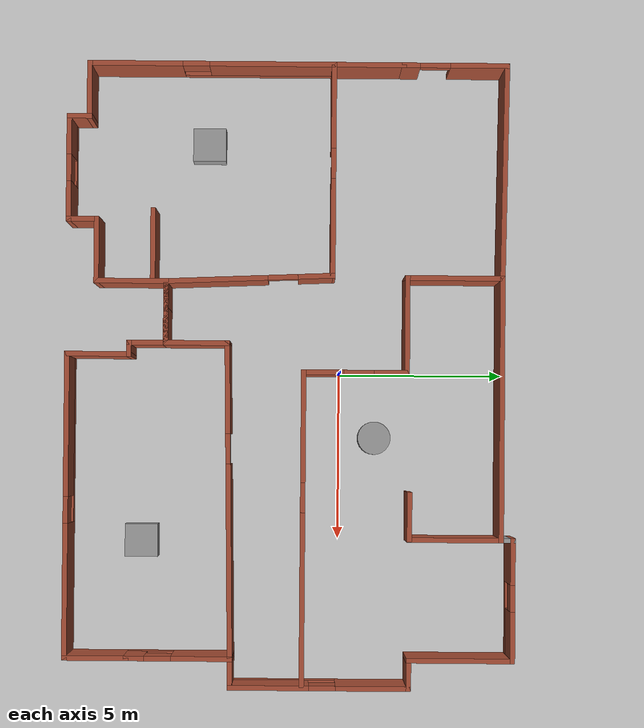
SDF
<sdf version="1.7">
 <world name="default">
  <light name="sun" type="directional">
   <pose>0 0 10 0 -0 0</pose>
   <diffuse>0.8 0.8 0.8 1</diffuse>
   <specular>0.2 0.2 0.2 1</specular>
   <attenuation>
    <range>1000</range>
    <constant>0.9</constant>
    <linear>0.01</linear>
    <quadratic>0.001</quadratic>
   </attenuation>
   <direction>-0.5 0.1 -0.9</direction>
   <spot><inner_angle>0</inner_angle><outer_angle>0</outer_angle><falloff>0</falloff></spot>
  </light>
  <model name="ground_plane">
   <static>1</static>
   <link name="link">
    <collision name="collision">
     <geometry><plane><normal>0 0 1</normal><size>100 100</size></plane></geometry>
     <surface>
      <contact><collide_bitmask>65535</collide_bitmask></contact>
      <friction><ode><mu>100</mu><mu2>50</mu2></ode></friction>
     </surface>
    </collision>
    <visual name="visual">
     <cast_shadows>0</cast_shadows>
     <geometry><plane><normal>0 0 1</normal><size>100 100</size></plane></geometry>
     <material>
      <script><uri>file://media/materials/scripts/gazebo.material</uri><name>Gazebo/Grey</name></script>
     </material>
    </visual>
   </link>
  </model>
  <gravity>0 0 -9.8</gravity>
  <magnetic_field>6e-06 2.3e-05 -4.2e-05</magnetic_field>
  <atmosphere type="adiabatic"/>
  <physics type="ode">
   <max_step_size>0.001</max_step_size>
   <real_time_factor>1</real_time_factor>
   <real_time_update_rate>1000</real_time_update_rate>
  </physics>
  <scene><ambient>0.4 0.4 0.4 1</ambient><background>0.7 0.7 0.7 1</background><shadows>1</shadows></scene>
  <spherical_coordinates>
   <surface_model>EARTH_WGS84</surface_model>
   <latitude_deg>0</latitude_deg>
   <longitude_deg>0</longitude_deg>
   <elevation>0</elevation>
   <heading_deg>0</heading_deg>
  </spherical_coordinates>
  <model name="house">
   <pose>0.067509 -1.47324 0 0 -0 0</pose>
   <link name="Wall_14">
    <collision name="Wall_14_Collision">
     <geometry><box><size>8 0.15 2.5</size></box></geometry>
     <pose>0 0 1.25 0 -0 0</pose>
    </collision>
    <visual name="Wall_14_Visual">
     <pose>0 0 1.25 0 -0 0</pose>
     <geometry><box><size>8 0.15 2.5</size></box></geometry>
     <material>
      <script><uri>file://media/materials/scripts/gazebo.material</uri><name>Gazebo/Bricks</name></script>
      <ambient>1 1 1 1</ambient>
     </material>
     <meta><layer>0</layer></meta>
    </visual>
    <pose>0.975581 6.35 0 0 -0 0</pose>
   </link>
   <link name="Wall_15">
    <collision name="Wall_15_Collision">
     <geometry><box><size>0.5 0.15 2.5</size></box></geometry>
     <pose>0 0 1.25 0 -0 0</pose>
    </collision>
    <visual name="Wall_15_Visual">
     <pose>0 0 1.25 0 -0 0</pose>
     <geometry><box><size>0.5 0.15 2.5</size></box></geometry>
     <material>
      <script><uri>file://media/materials/scripts/gazebo.material</uri><name>Gazebo/Grey</name></script>
      <ambient>1 1 1 1</ambient>
     </material>
     <meta><layer>0</layer></meta>
    </visual>
    <pose>4.90058 6.525 0 0 -0 1.5708</pose>
   </link>
   <link name="Wall_16">
    <pose>6.70058 6.7 0 0 -0 0</pose>
    <visual name="Wall_16_Visual_0">
     <pose>-1.17545 0 1.25 0 -0 0</pose>
     <geometry><box><size>1.39911 0.15 2.5</size></box></geometry>
     <material>
      <script><uri>file://media/materials/scripts/gazebo.material</uri><name>Gazebo/Bricks</name></script>
      <ambient>1 1 1 1</ambient>
     </material>
     <meta><layer>0</layer></meta>
    </visual>
    <collision name="Wall_16_Collision_0">
     <geometry><box><size>1.39911 0.15 2.5</size></box></geometry>
     <pose>-1.17545 0 1.25 0 -0 0</pose>
    </collision>
    <visual name="Wall_16_Visual_1">
     <pose>0.699555 0 0.25 0 -0 0</pose>
     <geometry><box><size>2.35089 0.15 0.5</size></box></geometry>
     <material>
      <script><uri>file://media/materials/scripts/gazebo.material</uri><name>Gazebo/Bricks</name></script>
      <ambient>1 1 1 1</ambient>
     </material>
     <meta><layer>0</layer></meta>
    </visual>
    <collision name="Wall_16_Collision_1">
     <geometry><box><size>2.35089 0.15 0.5</size></box></geometry>
     <pose>0.699555 0 0.25 0 -0 0</pose>
    </collision>
    <visual name="Wall_16_Visual_2">
     <pose>1.09956 0 1.5 0 -0 0</pose>
     <geometry><box><size>1.55089 0.15 2</size></box></geometry>
     <material>
      <script><uri>file://media/materials/scripts/gazebo.material</uri><name>Gazebo/Bricks</name></script>
      <ambient>1 1 1 1</ambient>
     </material>
     <meta><layer>0</layer></meta>
    </visual>
    <collision name="Wall_16_Collision_2">
     <geometry><box><size>1.55089 0.15 2</size></box></geometry>
     <pose>1.09956 0 1.5 0 -0 0</pose>
    </collision>
    <visual name="Wall_16_Visual_3">
     <pose>-0.075891 0 1.9 0 -0 0</pose>
     <geometry><box><size>0.8 0.15 1.2</size></box></geometry>
     <material>
      <script><uri>file://media/materials/scripts/gazebo.material</uri><name>Gazebo/Bricks</name></script>
      <ambient>1 1 1 1</ambient>
     </material>
     <meta><layer>0</layer></meta>
    </visual>
    <collision name="Wall_16_Collision_3">
     <geometry><box><size>0.8 0.15 1.2</size></box></geometry>
     <pose>-0.075891 0 1.9 0 -0 0</pose>
    </collision>
   </link>
   <link name="Wall_17">
    <collision name="Wall_17_Collision">
     <geometry><box><size>3.25 0.15 2.5</size></box></geometry>
     <pose>0 0 1.25 0 -0 0</pose>
    </collision>
    <visual name="Wall_17_Visual">
     <pose>0 0 1.25 0 -0 0</pose>
     <geometry><box><size>3.25 0.15 2.5</size></box></geometry>
     <material>
      <script><uri>file://media/materials/scripts/gazebo.material</uri><name>Gazebo/Bricks</name></script>
      <ambient>1 1 1 1</ambient>
     </material>
     <meta><layer>0</layer></meta>
    </visual>
    <pose>8.50058 5.15 0 0 -0 -1.5708</pose>
   </link>
   <link name="Wall_18">
    <collision name="Wall_18_Collision">
     <geometry><box><size>1 0.15 2.5</size></box></geometry>
     <pose>0 0 1.25 0 -0 0</pose>
    </collision>
    <visual name="Wall_18_Visual">
     <pose>0 0 1.25 0 -0 0</pose>
     <geometry><box><size>1 0.15 2.5</size></box></geometry>
     <material>
      <script><uri>file://media/materials/scripts/gazebo.material</uri><name>Gazebo/Bricks</name></script>
      <ambient>1 1 1 1</ambient>
     </material>
     <meta><layer>0</layer></meta>
    </visual>
    <pose>8.92558 3.6 0 0 -0 0</pose>
   </link>
   <link name="Wall_19">
    <pose>9.35058 0.925 0 0 -0 -1.5708</pose>
    <visual name="Wall_19_Visual_0">
     <pose>-1.61888 0 1.25 0 -0 0</pose>
     <geometry><box><size>2.26223 0.15 2.5</size></box></geometry>
     <material>
      <script><uri>file://media/materials/scripts/gazebo.material</uri><name>Gazebo/Bricks</name></script>
      <ambient>1 1 1 1</ambient>
     </material>
     <meta><layer>0</layer></meta>
    </visual>
    <collision name="Wall_19_Collision_0">
     <geometry><box><size>2.26223 0.15 2.5</size></box></geometry>
     <pose>-1.61888 0 1.25 0 -0 0</pose>
    </collision>
    <visual name="Wall_19_Visual_1">
     <pose>1.13112 0 0.25 0 -0 0</pose>
     <geometry><box><size>3.23777 0.15 0.5</size></box></geometry>
     <material>
      <script><uri>file://media/materials/scripts/gazebo.material</uri><name>Gazebo/Bricks</name></script>
      <ambient>1 1 1 1</ambient>
     </material>
     <meta><layer>0</layer></meta>
    </visual>
    <collision name="Wall_19_Collision_1">
     <geometry><box><size>3.23777 0.15 0.5</size></box></geometry>
     <pose>1.13112 0 0.25 0 -0 0</pose>
    </collision>
    <visual name="Wall_19_Visual_2">
     <pose>1.53112 0 1.5 0 -0 0</pose>
     <geometry><box><size>2.43777 0.15 2</size></box></geometry>
     <material>
      <script><uri>file://media/materials/scripts/gazebo.material</uri><name>Gazebo/Bricks</name></script>
      <ambient>1 1 1 1</ambient>
     </material>
     <meta><layer>0</layer></meta>
    </visual>
    <collision name="Wall_19_Collision_2">
     <geometry><box><size>2.43777 0.15 2</size></box></geometry>
     <pose>1.53112 0 1.5 0 -0 0</pose>
    </collision>
    <visual name="Wall_19_Visual_3">
     <pose>-0.08777 0 1.9 0 -0 0</pose>
     <geometry><box><size>0.8 0.15 1.2</size></box></geometry>
     <material>
      <script><uri>file://media/materials/scripts/gazebo.material</uri><name>Gazebo/Bricks</name></script>
      <ambient>1 1 1 1</ambient>
     </material>
     <meta><layer>0</layer></meta>
    </visual>
    <collision name="Wall_19_Collision_3">
     <geometry><box><size>0.8 0.15 1.2</size></box></geometry>
     <pose>-0.08777 0 1.9 0 -0 0</pose>
    </collision>
   </link>
   <link name="Wall_20">
    <collision name="Wall_20_Collision">
     <geometry><box><size>1 0.15 2.5</size></box></geometry>
     <pose>0 0 1.25 0 -0 0</pose>
    </collision>
    <visual name="Wall_20_Visual">
     <pose>0 0 1.25 0 -0 0</pose>
     <geometry><box><size>1 0.15 2.5</size></box></geometry>
     <material>
      <script><uri>file://media/materials/scripts/gazebo.material</uri><name>Gazebo/Bricks</name></script>
      <ambient>1 1 1 1</ambient>
     </material>
     <meta><layer>0</layer></meta>
    </visual>
    <pose>8.92558 -1.75 0 0 -0 3.14159</pose>
   </link>
   <link name="Wall_21">
    <pose>8.50058 -3.3 0 0 -0 -1.5708</pose>
    <visual name="Wall_21_Visual_0">
     <pose>-0.706371 0 1.25 0 -0 0</pose>
     <geometry><box><size>1.83726 0.15 2.5</size></box></geometry>
     <material>
      <script><uri>file://media/materials/scripts/gazebo.material</uri><name>Gazebo/Bricks</name></script>
      <ambient>1 1 1 1</ambient>
     </material>
     <meta><layer>0</layer></meta>
    </visual>
    <collision name="Wall_21_Collision_0">
     <geometry><box><size>1.83726 0.15 2.5</size></box></geometry>
     <pose>-0.706371 0 1.25 0 -0 0</pose>
    </collision>
    <visual name="Wall_21_Visual_1">
     <pose>0.918629 0 0.25 0 -0 0</pose>
     <geometry><box><size>1.41274 0.15 0.5</size></box></geometry>
     <material>
      <script><uri>file://media/materials/scripts/gazebo.material</uri><name>Gazebo/Bricks</name></script>
      <ambient>1 1 1 1</ambient>
     </material>
     <meta><layer>0</layer></meta>
    </visual>
    <collision name="Wall_21_Collision_1">
     <geometry><box><size>1.41274 0.15 0.5</size></box></geometry>
     <pose>0.918629 0 0.25 0 -0 0</pose>
    </collision>
    <visual name="Wall_21_Visual_2">
     <pose>1.31863 0 1.5 0 -0 0</pose>
     <geometry><box><size>0.612743 0.15 2</size></box></geometry>
     <material>
      <script><uri>file://media/materials/scripts/gazebo.material</uri><name>Gazebo/Bricks</name></script>
      <ambient>1 1 1 1</ambient>
     </material>
     <meta><layer>0</layer></meta>
    </visual>
    <collision name="Wall_21_Collision_2">
     <geometry><box><size>0.612743 0.15 2</size></box></geometry>
     <pose>1.31863 0 1.5 0 -0 0</pose>
    </collision>
    <visual name="Wall_21_Visual_3">
     <pose>0.612257 0 1.9 0 -0 0</pose>
     <geometry><box><size>0.8 0.15 1.2</size></box></geometry>
     <material>
      <script><uri>file://media/materials/scripts/gazebo.material</uri><name>Gazebo/Bricks</name></script>
      <ambient>1 1 1 1</ambient>
     </material>
     <meta><layer>0</layer></meta>
    </visual>
    <collision name="Wall_21_Collision_3">
     <geometry><box><size>0.8 0.15 1.2</size></box></geometry>
     <pose>0.612257 0 1.9 0 -0 0</pose>
    </collision>
   </link>
   <link name="Wall_22">
    <collision name="Wall_22_Collision">
     <geometry><box><size>2 0.15 2.5</size></box></geometry>
     <pose>0 0 1.25 0 -0 0</pose>
    </collision>
    <visual name="Wall_22_Visual">
     <pose>0 0 1.25 0 -0 0</pose>
     <geometry><box><size>2 0.15 2.5</size></box></geometry>
     <material>
      <script><uri>file://media/materials/scripts/gazebo.material</uri><name>Gazebo/Bricks</name></script>
      <ambient>1 1 1 1</ambient>
     </material>
     <meta><layer>0</layer></meta>
    </visual>
    <pose>8.50058 -5.775 0 0 -0 -1.5708</pose>
   </link>
   <link name="Wall_23">
    <pose>3.95058 -6.7 0 0 -0 3.14159</pose>
    <visual name="Wall_23_Visual_0">
     <pose>-2.58006 0 1.25 0 -0 0</pose>
     <geometry><box><size>4.08988 0.15 2.5</size></box></geometry>
     <material>
      <script><uri>file://media/materials/scripts/gazebo.material</uri><name>Gazebo/Bricks</name></script>
      <ambient>1 1 1 1</ambient>
     </material>
     <meta><layer>0</layer></meta>
    </visual>
    <collision name="Wall_23_Collision_0">
     <geometry><box><size>4.08988 0.15 2.5</size></box></geometry>
     <pose>-2.58006 0 1.25 0 -0 0</pose>
    </collision>
    <visual name="Wall_23_Visual_1">
     <pose>2.04494 0 0.25 0 -0 0</pose>
     <geometry><box><size>5.16012 0.15 0.5</size></box></geometry>
     <material>
      <script><uri>file://media/materials/scripts/gazebo.material</uri><name>Gazebo/Bricks</name></script>
      <ambient>1 1 1 1</ambient>
     </material>
     <meta><layer>0</layer></meta>
    </visual>
    <collision name="Wall_23_Collision_1">
     <geometry><box><size>5.16012 0.15 0.5</size></box></geometry>
     <pose>2.04494 0 0.25 0 -0 0</pose>
    </collision>
    <visual name="Wall_23_Visual_2">
     <pose>2.44494 0 1.5 0 -0 0</pose>
     <geometry><box><size>4.36012 0.15 2</size></box></geometry>
     <material>
      <script><uri>file://media/materials/scripts/gazebo.material</uri><name>Gazebo/Bricks</name></script>
      <ambient>1 1 1 1</ambient>
     </material>
     <meta><layer>0</layer></meta>
    </visual>
    <collision name="Wall_23_Collision_2">
     <geometry><box><size>4.36012 0.15 2</size></box></geometry>
     <pose>2.44494 0 1.5 0 -0 0</pose>
    </collision>
    <visual name="Wall_23_Visual_3">
     <pose>-0.13512 0 1.9 0 -0 0</pose>
     <geometry><box><size>0.8 0.15 1.2</size></box></geometry>
     <material>
      <script><uri>file://media/materials/scripts/gazebo.material</uri><name>Gazebo/Bricks</name></script>
      <ambient>1 1 1 1</ambient>
     </material>
     <meta><layer>0</layer></meta>
    </visual>
    <collision name="Wall_23_Collision_3">
     <geometry><box><size>0.8 0.15 1.2</size></box></geometry>
     <pose>-0.13512 0 1.9 0 -0 0</pose>
    </collision>
   </link>
   <link name="Wall_24">
    <collision name="Wall_24_Collision">
     <geometry><box><size>2 0.15 2.5</size></box></geometry>
     <pose>0 0 1.25 0 -0 0</pose>
    </collision>
    <visual name="Wall_24_Visual">
     <pose>0 0 1.25 0 -0 0</pose>
     <geometry><box><size>2 0.15 2.5</size></box></geometry>
     <material>
      <script><uri>file://media/materials/scripts/gazebo.material</uri><name>Gazebo/Bricks</name></script>
      <ambient>1 1 1 1</ambient>
     </material>
     <meta><layer>0</layer></meta>
    </visual>
    <pose>-0.599419 -5.775 0 0 -0 1.5708</pose>
   </link>
   <link name="Wall_25">
    <collision name="Wall_25_Collision">
     <geometry><box><size>0.5 0.15 2.5</size></box></geometry>
     <pose>0 0 1.25 0 -0 0</pose>
    </collision>
    <visual name="Wall_25_Visual">
     <pose>0 0 1.25 0 -0 0</pose>
     <geometry><box><size>0.5 0.15 2.5</size></box></geometry>
     <material>
      <script><uri>file://media/materials/scripts/gazebo.material</uri><name>Gazebo/Bricks</name></script>
      <ambient>1 1 1 1</ambient>
     </material>
     <meta><layer>0</layer></meta>
    </visual>
    <pose>-0.774419 -4.85 0 0 -0 3.14159</pose>
   </link>
   <link name="Wall_26">
    <collision name="Wall_26_Collision">
     <geometry><box><size>1.25 0.15 2.5</size></box></geometry>
     <pose>0 0 1.25 0 -0 0</pose>
    </collision>
    <visual name="Wall_26_Visual">
     <pose>0 0 1.25 0 -0 0</pose>
     <geometry><box><size>1.25 0.15 2.5</size></box></geometry>
     <material>
      <script><uri>file://media/materials/scripts/gazebo.material</uri><name>Gazebo/Bricks</name></script>
      <ambient>1 1 1 1</ambient>
     </material>
     <meta><layer>0</layer></meta>
    </visual>
    <pose>-0.949419 -4.3 0 0 -0 1.5708</pose>
   </link>
   <link name="Wall_27">
    <collision name="Wall_27_Collision">
     <geometry><box><size>2 0.15 2.5</size></box></geometry>
     <pose>0 0 1.25 0 -0 0</pose>
    </collision>
    <visual name="Wall_27_Visual">
     <pose>0 0 1.25 0 -0 0</pose>
     <geometry><box><size>2 0.15 2.5</size></box></geometry>
     <material>
      <script><uri>file://media/materials/scripts/gazebo.material</uri><name>Gazebo/Bricks</name></script>
      <ambient>1 1 1 1</ambient>
     </material>
     <meta><layer>0</layer></meta>
    </visual>
    <pose>-1.87442 -3.75 0 0 -0 3.14159</pose>
   </link>
   <link name="Wall_28">
    <collision name="Wall_28_Collision">
     <geometry><box><size>2.25 0.15 2.5</size></box></geometry>
     <pose>0 0 1.25 0 -0 0</pose>
    </collision>
    <visual name="Wall_28_Visual">
     <pose>0 0 1.25 0 -0 0</pose>
     <geometry><box><size>2.25 0.15 2.5</size></box></geometry>
     <material>
      <script><uri>file://media/materials/scripts/gazebo.material</uri><name>Gazebo/Bricks</name></script>
      <ambient>1 1 1 1</ambient>
     </material>
     <meta><layer>0</layer></meta>
    </visual>
    <pose>-2.79942 -4.8 0 0 -0 -1.5708</pose>
   </link>
   <link name="Wall_29">
    <collision name="Wall_29_Collision">
     <geometry><box><size>2 0.15 2.5</size></box></geometry>
     <pose>0 0 1.25 0 -0 0</pose>
    </collision>
    <visual name="Wall_29_Visual">
     <pose>0 0 1.25 0 -0 0</pose>
     <geometry><box><size>2 0.15 2.5</size></box></geometry>
     <material>
      <script><uri>file://media/materials/scripts/gazebo.material</uri><name>Gazebo/Bricks</name></script>
      <ambient>1 1 1 1</ambient>
     </material>
     <meta><layer>0</layer></meta>
    </visual>
    <pose>-3.72442 -5.85 0 0 -0 3.14159</pose>
   </link>
   <link name="Wall_30">
    <collision name="Wall_30_Collision">
     <geometry><box><size>1 0.15 2.5</size></box></geometry>
     <pose>0 0 1.25 0 -0 0</pose>
    </collision>
    <visual name="Wall_30_Visual">
     <pose>0 0 1.25 0 -0 0</pose>
     <geometry><box><size>1 0.15 2.5</size></box></geometry>
     <material>
      <script><uri>file://media/materials/scripts/gazebo.material</uri><name>Gazebo/Bricks</name></script>
      <ambient>1 1 1 1</ambient>
     </material>
     <meta><layer>0</layer></meta>
    </visual>
    <pose>-4.64942 -6.275 0 0 -0 -1.5708</pose>
   </link>
   <link name="Wall_31">
    <pose>-6.19942 -6.7 0 0 -0 3.14159</pose>
    <visual name="Wall_31_Visual_0">
     <pose>-1.0159 0 1.25 0 -0 0</pose>
     <geometry><box><size>1.2182 0.15 2.5</size></box></geometry>
     <material>
      <script><uri>file://media/materials/scripts/gazebo.material</uri><name>Gazebo/Bricks</name></script>
      <ambient>1 1 1 1</ambient>
     </material>
     <meta><layer>0</layer></meta>
    </visual>
    <collision name="Wall_31_Collision_0">
     <geometry><box><size>1.2182 0.15 2.5</size></box></geometry>
     <pose>-1.0159 0 1.25 0 -0 0</pose>
    </collision>
    <visual name="Wall_31_Visual_1">
     <pose>0.609098 0 0.25 0 -0 0</pose>
     <geometry><box><size>2.0318 0.15 0.5</size></box></geometry>
     <material>
      <script><uri>file://media/materials/scripts/gazebo.material</uri><name>Gazebo/Bricks</name></script>
      <ambient>1 1 1 1</ambient>
     </material>
     <meta><layer>0</layer></meta>
    </visual>
    <collision name="Wall_31_Collision_1">
     <geometry><box><size>2.0318 0.15 0.5</size></box></geometry>
     <pose>0.609098 0 0.25 0 -0 0</pose>
    </collision>
    <visual name="Wall_31_Visual_2">
     <pose>1.0091 0 1.5 0 -0 0</pose>
     <geometry><box><size>1.2318 0.15 2</size></box></geometry>
     <material>
      <script><uri>file://media/materials/scripts/gazebo.material</uri><name>Gazebo/Bricks</name></script>
      <ambient>1 1 1 1</ambient>
     </material>
     <meta><layer>0</layer></meta>
    </visual>
    <collision name="Wall_31_Collision_2">
     <geometry><box><size>1.2318 0.15 2</size></box></geometry>
     <pose>1.0091 0 1.5 0 -0 0</pose>
    </collision>
    <visual name="Wall_31_Visual_3">
     <pose>-0.006803 0 1.9 0 -0 0</pose>
     <geometry><box><size>0.8 0.15 1.2</size></box></geometry>
     <material>
      <script><uri>file://media/materials/scripts/gazebo.material</uri><name>Gazebo/Bricks</name></script>
      <ambient>1 1 1 1</ambient>
     </material>
     <meta><layer>0</layer></meta>
    </visual>
    <collision name="Wall_31_Collision_3">
     <geometry><box><size>0.8 0.15 1.2</size></box></geometry>
     <pose>-0.006803 0 1.9 0 -0 0</pose>
    </collision>
   </link>
   <link name="Wall_32">
    <collision name="Wall_32_Collision">
     <geometry><box><size>0.75 0.15 2.5</size></box></geometry>
     <pose>0 0 1.25 0 -0 0</pose>
    </collision>
    <visual name="Wall_32_Visual">
     <pose>0 0 1.25 0 -0 0</pose>
     <geometry><box><size>0.75 0.15 2.5</size></box></geometry>
     <material>
      <script><uri>file://media/materials/scripts/gazebo.material</uri><name>Gazebo/Bricks</name></script>
      <ambient>1 1 1 1</ambient>
     </material>
     <meta><layer>0</layer></meta>
    </visual>
    <pose>-7.74942 -6.4 0 0 -0 1.5708</pose>
   </link>
   <link name="Wall_33">
    <collision name="Wall_33_Collision">
     <geometry><box><size>1.75 0.15 2.5</size></box></geometry>
     <pose>0 0 1.25 0 -0 0</pose>
    </collision>
    <visual name="Wall_33_Visual">
     <pose>0 0 1.25 0 -0 0</pose>
     <geometry><box><size>1.75 0.15 2.5</size></box></geometry>
     <material>
      <script><uri>file://media/materials/scripts/gazebo.material</uri><name>Gazebo/Bricks</name></script>
      <ambient>1 1 1 1</ambient>
     </material>
     <meta><layer>0</layer></meta>
    </visual>
    <pose>-8.54942 -6.1 0 0 -0 3.14159</pose>
   </link>
   <link name="Wall_34">
    <pose>-9.34942 -2.425 0 0 -0 1.5708</pose>
    <visual name="Wall_34_Visual_0">
     <pose>-2.31389 0 1.25 0 -0 0</pose>
     <geometry><box><size>2.87222 0.15 2.5</size></box></geometry>
     <material>
      <script><uri>file://media/materials/scripts/gazebo.material</uri><name>Gazebo/Bricks</name></script>
      <ambient>1 1 1 1</ambient>
     </material>
     <meta><layer>0</layer></meta>
    </visual>
    <collision name="Wall_34_Collision_0">
     <geometry><box><size>2.87222 0.15 2.5</size></box></geometry>
     <pose>-2.31389 0 1.25 0 -0 0</pose>
    </collision>
    <visual name="Wall_34_Visual_1">
     <pose>1.43611 0 0.25 0 -0 0</pose>
     <geometry><box><size>4.62778 0.15 0.5</size></box></geometry>
     <material>
      <script><uri>file://media/materials/scripts/gazebo.material</uri><name>Gazebo/Bricks</name></script>
      <ambient>1 1 1 1</ambient>
     </material>
     <meta><layer>0</layer></meta>
    </visual>
    <collision name="Wall_34_Collision_1">
     <geometry><box><size>4.62778 0.15 0.5</size></box></geometry>
     <pose>1.43611 0 0.25 0 -0 0</pose>
    </collision>
    <visual name="Wall_34_Visual_2">
     <pose>1.83611 0 1.5 0 -0 0</pose>
     <geometry><box><size>3.82778 0.15 2</size></box></geometry>
     <material>
      <script><uri>file://media/materials/scripts/gazebo.material</uri><name>Gazebo/Bricks</name></script>
      <ambient>1 1 1 1</ambient>
     </material>
     <meta><layer>0</layer></meta>
    </visual>
    <collision name="Wall_34_Collision_2">
     <geometry><box><size>3.82778 0.15 2</size></box></geometry>
     <pose>1.83611 0 1.5 0 -0 0</pose>
    </collision>
    <visual name="Wall_34_Visual_3">
     <pose>-0.477779 0 1.9 0 -0 0</pose>
     <geometry><box><size>0.8 0.15 1.2</size></box></geometry>
     <material>
      <script><uri>file://media/materials/scripts/gazebo.material</uri><name>Gazebo/Bricks</name></script>
      <ambient>1 1 1 1</ambient>
     </material>
     <meta><layer>0</layer></meta>
    </visual>
    <collision name="Wall_34_Collision_3">
     <geometry><box><size>0.8 0.15 1.2</size></box></geometry>
     <pose>-0.477779 0 1.9 0 -0 0</pose>
    </collision>
   </link>
   <link name="Wall_35">
    <collision name="Wall_35_Collision">
     <geometry><box><size>2.25 0.15 2.5</size></box></geometry>
     <pose>0 0 1.25 0 -0 0</pose>
    </collision>
    <visual name="Wall_35_Visual">
     <pose>0 0 1.25 0 -0 0</pose>
     <geometry><box><size>2.25 0.15 2.5</size></box></geometry>
     <material>
      <script><uri>file://media/materials/scripts/gazebo.material</uri><name>Gazebo/Bricks</name></script>
      <ambient>1 1 1 1</ambient>
     </material>
     <meta><layer>0</layer></meta>
    </visual>
    <pose>-9.34942 2.3 0 0 -0 1.5708</pose>
   </link>
   <link name="Wall_36">
    <pose>-9.34942 4.9 0 0 -0 1.5708</pose>
    <visual name="Wall_36_Visual_0">
     <pose>-1.34406 0 1.25 0 -0 0</pose>
     <geometry><box><size>0.561886 0.15 2.5</size></box></geometry>
     <material>
      <script><uri>file://media/materials/scripts/gazebo.material</uri><name>Gazebo/Bricks</name></script>
      <ambient>1 1 1 1</ambient>
     </material>
     <meta><layer>0</layer></meta>
    </visual>
    <collision name="Wall_36_Collision_0">
     <geometry><box><size>0.561886 0.15 2.5</size></box></geometry>
     <pose>-1.34406 0 1.25 0 -0 0</pose>
    </collision>
    <visual name="Wall_36_Visual_1">
     <pose>0.730943 0 1.25 0 -0 0</pose>
     <geometry><box><size>1.78811 0.15 2.5</size></box></geometry>
     <material>
      <script><uri>file://media/materials/scripts/gazebo.material</uri><name>Gazebo/Bricks</name></script>
      <ambient>1 1 1 1</ambient>
     </material>
     <meta><layer>0</layer></meta>
    </visual>
    <collision name="Wall_36_Collision_1">
     <geometry><box><size>1.78811 0.15 2.5</size></box></geometry>
     <pose>0.730943 0 1.25 0 -0 0</pose>
    </collision>
    <visual name="Wall_36_Visual_2">
     <pose>-0.613114 0 2.25 0 -0 0</pose>
     <geometry><box><size>0.9 0.15 0.5</size></box></geometry>
     <material>
      <script><uri>file://media/materials/scripts/gazebo.material</uri><name>Gazebo/Bricks</name></script>
      <ambient>1 1 1 1</ambient>
     </material>
     <meta><layer>0</layer></meta>
    </visual>
    <collision name="Wall_36_Collision_2">
     <geometry><box><size>0.9 0.15 0.5</size></box></geometry>
     <pose>-0.613114 0 2.25 0 -0 0</pose>
    </collision>
   </link>
   <link name="Wall_37">
    <collision name="Wall_37_Collision">
     <geometry><box><size>6.55078 0.15 2.5</size></box></geometry>
     <pose>0 0 1.25 0 -0 0</pose>
    </collision>
    <visual name="Wall_37_Visual">
     <pose>0 0 1.25 0 -0 0</pose>
     <geometry><box><size>6.55078 0.15 2.5</size></box></geometry>
     <material>
      <script><uri>file://media/materials/scripts/gazebo.material</uri><name>Gazebo/Bricks</name></script>
      <ambient>1 1 1 1</ambient>
     </material>
     <meta><layer>0</layer></meta>
    </visual>
    <pose>-6.14942 6.4 0 0 -0 -0.015624</pose>
   </link>
   <link name="Wall_38">
    <collision name="Wall_38_Collision">
     <geometry><box><size>3 0.15 2.5</size></box></geometry>
     <pose>0 0 1.25 0 -0 0</pose>
    </collision>
    <visual name="Wall_38_Visual">
     <pose>0 0 1.25 0 -0 0</pose>
     <geometry><box><size>3 0.15 2.5</size></box></geometry>
     <material>
      <script><uri>file://media/materials/scripts/gazebo.material</uri><name>Gazebo/Bricks</name></script>
      <ambient>1 1 1 1</ambient>
     </material>
     <meta><layer>0</layer></meta>
    </visual>
    <pose>-2.94942 4.925 0 0 -0 -1.5708</pose>
   </link>
   <link name="Wall_39">
    <collision name="Wall_39_Collision">
     <geometry><box><size>3 0.15 2.5</size></box></geometry>
     <pose>0 0 1.25 0 -0 0</pose>
    </collision>
    <visual name="Wall_39_Visual">
     <pose>0 0 1.25 0 -0 0</pose>
     <geometry><box><size>3 0.15 2.5</size></box></geometry>
     <material>
      <script><uri>file://media/materials/scripts/gazebo.material</uri><name>Gazebo/Bricks</name></script>
      <ambient>1 1 1 1</ambient>
     </material>
     <meta><layer>0</layer></meta>
    </visual>
    <pose>-1.52442 3.5 0 0 -0 0</pose>
   </link>
   <link name="Wall_40">
    <pose>-0.099419 1.95 0 0 -0 -1.5708</pose>
    <visual name="Wall_40_Visual_0">
     <pose>-1.08892 0 1.25 0 -0 0</pose>
     <geometry><box><size>1.07216 0.15 2.5</size></box></geometry>
     <material>
      <script><uri>file://media/materials/scripts/gazebo.material</uri><name>Gazebo/Bricks</name></script>
      <ambient>1 1 1 1</ambient>
     </material>
     <meta><layer>0</layer></meta>
    </visual>
    <collision name="Wall_40_Collision_0">
     <geometry><box><size>1.07216 0.15 2.5</size></box></geometry>
     <pose>-1.08892 0 1.25 0 -0 0</pose>
    </collision>
    <visual name="Wall_40_Visual_1">
     <pose>0.986081 0 1.25 0 -0 0</pose>
     <geometry><box><size>1.27784 0.15 2.5</size></box></geometry>
     <material>
      <script><uri>file://media/materials/scripts/gazebo.material</uri><name>Gazebo/Bricks</name></script>
      <ambient>1 1 1 1</ambient>
     </material>
     <meta><layer>0</layer></meta>
    </visual>
    <collision name="Wall_40_Collision_1">
     <geometry><box><size>1.27784 0.15 2.5</size></box></geometry>
     <pose>0.986081 0 1.25 0 -0 0</pose>
    </collision>
    <visual name="Wall_40_Visual_2">
     <pose>-0.102838 0 2.25 0 -0 0</pose>
     <geometry><box><size>0.9 0.15 0.5</size></box></geometry>
     <material>
      <script><uri>file://media/materials/scripts/gazebo.material</uri><name>Gazebo/Bricks</name></script>
      <ambient>1 1 1 1</ambient>
     </material>
     <meta><layer>0</layer></meta>
    </visual>
    <collision name="Wall_40_Collision_2">
     <geometry><box><size>0.9 0.15 0.5</size></box></geometry>
     <pose>-0.102838 0 2.25 0 -0 0</pose>
    </collision>
   </link>
   <link name="Wall_41">
    <pose>4.57558 0.4 0 0 -0 0</pose>
    <visual name="Wall_41_Visual_0">
     <pose>-3.05907 0 1.25 0 -0 0</pose>
     <geometry><box><size>3.38186 0.15 2.5</size></box></geometry>
     <material>
      <script><uri>file://media/materials/scripts/gazebo.material</uri><name>Gazebo/Bricks</name></script>
      <ambient>1 1 1 1</ambient>
     </material>
     <meta><layer>0</layer></meta>
    </visual>
    <collision name="Wall_41_Collision_0">
     <geometry><box><size>3.38186 0.15 2.5</size></box></geometry>
     <pose>-3.05907 0 1.25 0 -0 0</pose>
    </collision>
    <visual name="Wall_41_Visual_1">
     <pose>2.14093 0 1.25 0 -0 0</pose>
     <geometry><box><size>5.21814 0.15 2.5</size></box></geometry>
     <material>
      <script><uri>file://media/materials/scripts/gazebo.material</uri><name>Gazebo/Bricks</name></script>
      <ambient>1 1 1 1</ambient>
     </material>
     <meta><layer>0</layer></meta>
    </visual>
    <collision name="Wall_41_Collision_1">
     <geometry><box><size>5.21814 0.15 2.5</size></box></geometry>
     <pose>2.14093 0 1.25 0 -0 0</pose>
    </collision>
    <visual name="Wall_41_Visual_2">
     <pose>-0.918143 0 2.25 0 -0 0</pose>
     <geometry><box><size>0.9 0.15 0.5</size></box></geometry>
     <material>
      <script><uri>file://media/materials/scripts/gazebo.material</uri><name>Gazebo/Bricks</name></script>
      <ambient>1 1 1 1</ambient>
     </material>
     <meta><layer>0</layer></meta>
    </visual>
    <collision name="Wall_41_Collision_2">
     <geometry><box><size>0.9 0.15 0.5</size></box></geometry>
     <pose>-0.918143 0 2.25 0 -0 0</pose>
    </collision>
   </link>
   <link name="Wall_43">
    <pose>-6.17442 1.25 0 0 -0 0</pose>
    <visual name="Wall_43_Visual_0">
     <pose>-1.95087 0 1.25 0 -0 0</pose>
     <geometry><box><size>2.59826 0.15 2.5</size></box></geometry>
     <material>
      <script><uri>file://media/materials/scripts/gazebo.material</uri><name>Gazebo/Bricks</name></script>
      <ambient>1 1 1 1</ambient>
     </material>
     <meta><layer>0</layer></meta>
    </visual>
    <collision name="Wall_43_Collision_0">
     <geometry><box><size>2.59826 0.15 2.5</size></box></geometry>
     <pose>-1.95087 0 1.25 0 -0 0</pose>
    </collision>
    <visual name="Wall_43_Visual_1">
     <pose>1.74913 0 1.25 0 -0 0</pose>
     <geometry><box><size>3.00174 0.15 2.5</size></box></geometry>
     <material>
      <script><uri>file://media/materials/scripts/gazebo.material</uri><name>Gazebo/Bricks</name></script>
      <ambient>1 1 1 1</ambient>
     </material>
     <meta><layer>0</layer></meta>
    </visual>
    <collision name="Wall_43_Collision_1">
     <geometry><box><size>3.00174 0.15 2.5</size></box></geometry>
     <pose>1.74913 0 1.25 0 -0 0</pose>
    </collision>
    <visual name="Wall_43_Visual_2">
     <pose>-0.201738 0 2.25 0 -0 0</pose>
     <geometry><box><size>0.9 0.15 0.5</size></box></geometry>
     <material>
      <script><uri>file://media/materials/scripts/gazebo.material</uri><name>Gazebo/Bricks</name></script>
      <ambient>1 1 1 1</ambient>
     </material>
     <meta><layer>0</layer></meta>
    </visual>
    <collision name="Wall_43_Collision_2">
     <geometry><box><size>0.9 0.15 0.5</size></box></geometry>
     <pose>-0.201738 0 2.25 0 -0 0</pose>
    </collision>
   </link>
   <link name="Wall_44">
    <pose>-2.89942 -1.25 0 0 -0 -1.53082</pose>
    <visual name="Wall_44_Visual_0">
     <pose>-2.01595 0 1.25 0 -0 0</pose>
     <geometry><box><size>1.1221 0.15 2.5</size></box></geometry>
     <material>
      <script><uri>file://media/materials/scripts/gazebo.material</uri><name>Gazebo/Bricks</name></script>
      <ambient>1 1 1 1</ambient>
     </material>
     <meta><layer>0</layer></meta>
    </visual>
    <collision name="Wall_44_Collision_0">
     <geometry><box><size>1.1221 0.15 2.5</size></box></geometry>
     <pose>-2.01595 0 1.25 0 -0 0</pose>
    </collision>
    <visual name="Wall_44_Visual_1">
     <pose>1.01105 0 1.25 0 -0 0</pose>
     <geometry><box><size>3.1319 0.15 2.5</size></box></geometry>
     <material>
      <script><uri>file://media/materials/scripts/gazebo.material</uri><name>Gazebo/Bricks</name></script>
      <ambient>1 1 1 1</ambient>
     </material>
     <meta><layer>0</layer></meta>
    </visual>
    <collision name="Wall_44_Collision_1">
     <geometry><box><size>3.1319 0.15 2.5</size></box></geometry>
     <pose>1.01105 0 1.25 0 -0 0</pose>
    </collision>
    <visual name="Wall_44_Visual_2">
     <pose>-1.0049 0 2.25 0 -0 0</pose>
     <geometry><box><size>0.9 0.15 0.5</size></box></geometry>
     <material>
      <script><uri>file://media/materials/scripts/gazebo.material</uri><name>Gazebo/Bricks</name></script>
      <ambient>1 1 1 1</ambient>
     </material>
     <meta><layer>0</layer></meta>
    </visual>
    <collision name="Wall_44_Collision_2">
     <geometry><box><size>0.9 0.15 0.5</size></box></geometry>
     <pose>-1.0049 0 2.25 0 -0 0</pose>
    </collision>
   </link>
   <link name="Wall_45">
    <collision name="Wall_45_Collision">
     <geometry><box><size>2 0.15 2.5</size></box></geometry>
     <pose>0 0 1.25 0 -0 0</pose>
    </collision>
    <visual name="Wall_45_Visual">
     <pose>0 0 1.25 0 -0 0</pose>
     <geometry><box><size>2 0.15 2.5</size></box></geometry>
     <material>
      <script><uri>file://media/materials/scripts/gazebo.material</uri><name>Gazebo/Bricks</name></script>
      <ambient>1 1 1 1</ambient>
     </material>
     <meta><layer>0</layer></meta>
    </visual>
    <pose>-1.87442 -3.75 0 0 -0 0</pose>
   </link>
   <link name="Wall_46">
    <collision name="Wall_46_Collision">
     <geometry><box><size>2 0.15 2.5</size></box></geometry>
     <pose>0 0 1.25 0 -0 0</pose>
    </collision>
    <visual name="Wall_46_Visual">
     <pose>0 0 1.25 0 -0 0</pose>
     <geometry><box><size>2 0.15 2.5</size></box></geometry>
     <material>
      <script><uri>file://media/materials/scripts/gazebo.material</uri><name>Gazebo/Bricks</name></script>
      <ambient>1 1 1 1</ambient>
     </material>
     <meta><layer>0</layer></meta>
    </visual>
    <pose>-0.949419 -2.825 0 0 -0 1.5708</pose>
   </link>
   <link name="Wall_47">
    <pose>3.77558 -1.825 0 0 -0 0.015872</pose>
    <visual name="Wall_47_Visual_0">
     <pose>-3.40465 0 1.25 0 -0 0</pose>
     <geometry><box><size>2.79188 0.15 2.5</size></box></geometry>
     <material>
      <script><uri>file://media/materials/scripts/gazebo.material</uri><name>Gazebo/Bricks</name></script>
      <ambient>1 1 1 1</ambient>
     </material>
     <meta><layer>0</layer></meta>
    </visual>
    <collision name="Wall_47_Collision_0">
     <geometry><box><size>2.79188 0.15 2.5</size></box></geometry>
     <pose>-3.40465 0 1.25 0 -0 0</pose>
    </collision>
    <visual name="Wall_47_Visual_1">
     <pose>1.84594 0 1.25 0 -0 0</pose>
     <geometry><box><size>5.90931 0.15 2.5</size></box></geometry>
     <material>
      <script><uri>file://media/materials/scripts/gazebo.material</uri><name>Gazebo/Bricks</name></script>
      <ambient>1 1 1 1</ambient>
     </material>
     <meta><layer>0</layer></meta>
    </visual>
    <collision name="Wall_47_Collision_1">
     <geometry><box><size>5.90931 0.15 2.5</size></box></geometry>
     <pose>1.84594 0 1.25 0 -0 0</pose>
    </collision>
    <visual name="Wall_47_Visual_2">
     <pose>-1.55871 0 2.25 0 -0 0</pose>
     <geometry><box><size>0.9 0.15 0.5</size></box></geometry>
     <material>
      <script><uri>file://media/materials/scripts/gazebo.material</uri><name>Gazebo/Bricks</name></script>
      <ambient>1 1 1 1</ambient>
     </material>
     <meta><layer>0</layer></meta>
    </visual>
    <collision name="Wall_47_Collision_2">
     <geometry><box><size>0.9 0.15 0.5</size></box></geometry>
     <pose>-1.55871 0 2.25 0 -0 0</pose>
    </collision>
   </link>
   <link name="Wall_49">
    <collision name="Wall_49_Collision">
     <geometry><box><size>3.25 0.15 2.5</size></box></geometry>
     <pose>0 0 1.25 0 -0 0</pose>
    </collision>
    <visual name="Wall_49_Visual">
     <pose>0 0 1.25 0 -0 0</pose>
     <geometry><box><size>3.25 0.15 2.5</size></box></geometry>
     <material>
      <script><uri>file://media/materials/scripts/gazebo.material</uri><name>Gazebo/Bricks</name></script>
      <ambient>1 1 1 1</ambient>
     </material>
     <meta><layer>0</layer></meta>
    </visual>
    <pose>4.90058 5.15 0 0 -0 -1.5708</pose>
   </link>
   <link name="Wall_50">
    <collision name="Wall_50_Collision">
     <geometry><box><size>1.5 0.15 2.5</size></box></geometry>
     <pose>0 0 1.25 0 -0 0</pose>
    </collision>
    <visual name="Wall_50_Visual">
     <pose>0 0 1.25 0 -0 0</pose>
     <geometry><box><size>1.5 0.15 2.5</size></box></geometry>
     <material>
      <script><uri>file://media/materials/scripts/gazebo.material</uri><name>Gazebo/Bricks</name></script>
      <ambient>1 1 1 1</ambient>
     </material>
     <meta><layer>0</layer></meta>
    </visual>
    <pose>4.22558 3.6 0 0 -0 3.14159</pose>
   </link>
   <link name="Wall_52">
    <collision name="Wall_52_Collision">
     <geometry><box><size>2.25 0.15 2.5</size></box></geometry>
     <pose>0 0 1.25 0 -0 0</pose>
    </collision>
    <visual name="Wall_52_Visual">
     <pose>0 0 1.25 0 -0 0</pose>
     <geometry><box><size>2.25 0.15 2.5</size></box></geometry>
     <material>
      <script><uri>file://media/materials/scripts/gazebo.material</uri><name>Gazebo/Bricks</name></script>
      <ambient>1 1 1 1</ambient>
     </material>
     <meta><layer>0</layer></meta>
    </visual>
    <pose>-3.87036 -4.15602 0 0 -0 3.14159</pose>
   </link>
   <static>1</static>
  </model>
  <model name="unit_box_0">
   <pose>-7 -4.00002 0.499995 1e-05 -0 0</pose>
   <link name="link">
    <inertial>
     <mass>1</mass>
     <inertia>
      <ixx>0.166667</ixx>
      <ixy>0</ixy>
      <ixz>0</ixz>
      <iyy>0.166667</iyy>
      <iyz>0</iyz>
      <izz>0.166667</izz>
     </inertia>
    </inertial>
    <collision name="collision"><geometry><box><size>1 1 1</size></box></geometry></collision>
    <visual name="visual">
     <geometry><box><size>1 1 1</size></box></geometry>
     <material>
      <script><name>Gazebo/Grey</name><uri>file://media/materials/scripts/gazebo.material</uri></script>
     </material>
    </visual>
   </link>
  </model>
  <model name="unit_cylinder">
   <pose>1.92778 1.08578 0.499992 -3e-06 4e-06 0</pose>
   <link name="link">
    <inertial>
     <mass>1</mass>
     <inertia><ixx>0.145833</ixx><ixy>0</ixy><ixz>0</ixz><iyy>0.145833</iyy><iyz>0</iyz><izz>0.125</izz></inertia>
    </inertial>
    <collision name="collision">
     <geometry><cylinder><radius>0.5</radius><length>1</length></cylinder></geometry>
    </collision>
    <visual name="visual">
     <geometry><cylinder><radius>0.5</radius><length>1</length></cylinder></geometry>
     <material>
      <script><name>Gazebo/Grey</name><uri>file://media/materials/scripts/gazebo.material</uri></script>
     </material>
    </visual>
   </link>
  </model>
  <model name="unit_box">
   <pose>5.08688 -5.97935 0.499995 1e-05 -0 0</pose>
   <link name="link">
    <inertial>
     <mass>1</mass>
     <inertia>
      <ixx>0.166667</ixx>
      <ixy>0</ixy>
      <ixz>0</ixz>
      <iyy>0.166667</iyy>
      <iyz>0</iyz>
      <izz>0.166667</izz>
     </inertia>
    </inertial>
    <collision name="collision"><geometry><box><size>1 1 1</size></box></geometry></collision>
    <visual name="visual">
     <geometry><box><size>1 1 1</size></box></geometry>
     <material>
      <script><name>Gazebo/Grey</name><uri>file://media/materials/scripts/gazebo.material</uri></script>
     </material>
    </visual>
   </link>
  </model>
  <light name="user_point_light_1" type="point">
   <pose>5.47236 1.28039 1 0 -0 0</pose>
   <diffuse>0.5 0.5 0.5 1</diffuse>
   <specular>0.1 0.1 0.1 1</specular>
   <attenuation>
    <range>20</range>
    <constant>0.5</constant>
    <linear>0.01</linear>
    <quadratic>0.001</quadratic>
   </attenuation>
   <cast_shadows>0</cast_shadows>
   <direction>0 0 -1</direction>
   <spot><inner_angle>0</inner_angle><outer_angle>0</outer_angle><falloff>0</falloff></spot>
  </light>
  <light name="user_point_light_2" type="point">
   <pose>3.36732 -5.5492 1 0 -0 0</pose>
   <diffuse>0.5 0.5 0.5 1</diffuse>
   <specular>0.1 0.1 0.1 1</specular>
   <attenuation>
    <range>20</range>
    <constant>0.5</constant>
    <linear>0.01</linear>
    <quadratic>0.001</quadratic>
   </attenuation>
   <cast_shadows>0</cast_shadows>
   <direction>0 0 -1</direction>
   <spot><inner_angle>0</inner_angle><outer_angle>0</outer_angle><falloff>0</falloff></spot>
  </light>
  <light name="user_point_light_3" type="point">
   <pose>-5.87538 -3.85459 1 0 -0 0</pose>
   <diffuse>0.5 0.5 0.5 1</diffuse>
   <specular>0.1 0.1 0.1 1</specular>
   <attenuation>
    <range>20</range>
    <constant>0.5</constant>
    <linear>0.01</linear>
    <quadratic>0.001</quadratic>
   </attenuation>
   <cast_shadows>0</cast_shadows>
   <direction>0 0 -1</direction>
   <spot><inner_angle>0</inner_angle><outer_angle>0</outer_angle><falloff>0</falloff></spot>
  </light>
  <light name="user_point_light_0" type="point">
   <pose>-0.172273 -1.92175 1 0 -0 0</pose>
   <diffuse>0.5 0.5 0.5 1</diffuse>
   <specular>0.1 0.1 0.1 1</specular>
   <attenuation>
    <range>20</range>
    <constant>0.5</constant>
    <linear>0.01</linear>
    <quadratic>0.001</quadratic>
   </attenuation>
   <cast_shadows>0</cast_shadows>
   <direction>0 0 -1</direction>
   <spot><inner_angle>0</inner_angle><outer_angle>0</outer_angle><falloff>0</falloff></spot>
  </light>
 </world>
</sdf>
